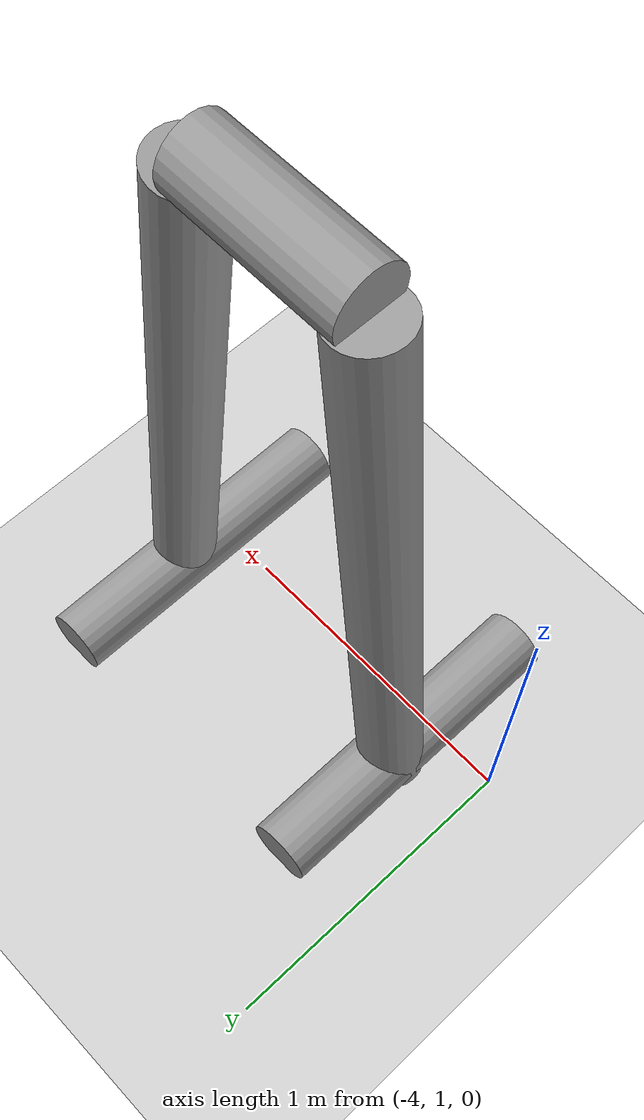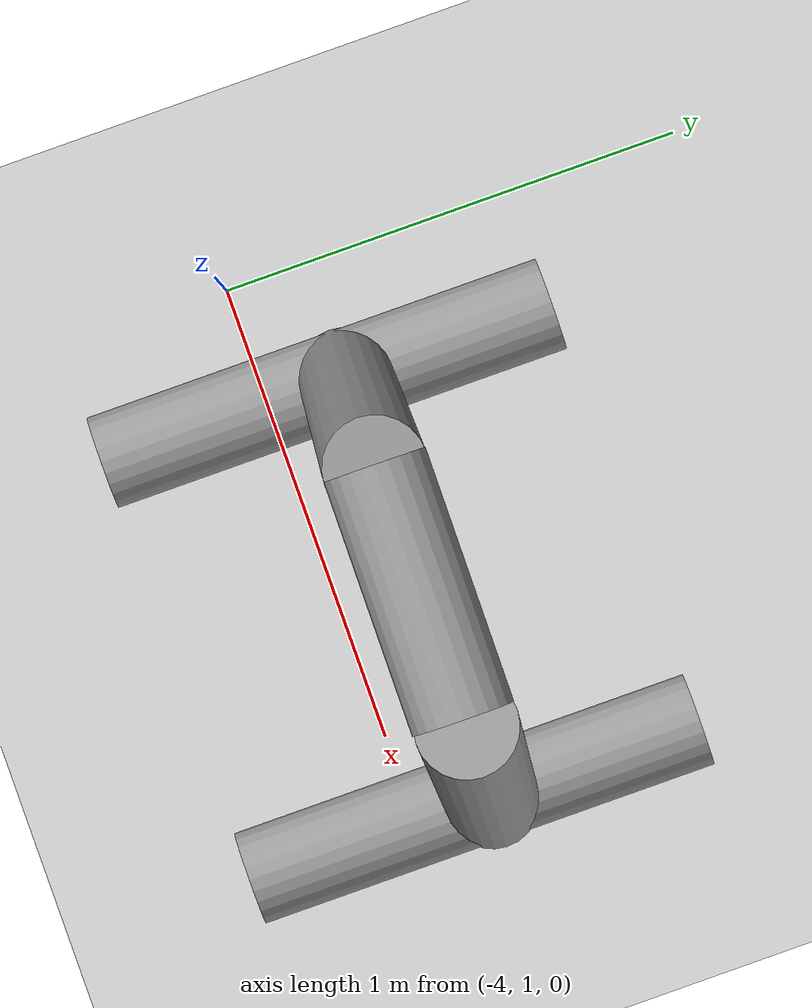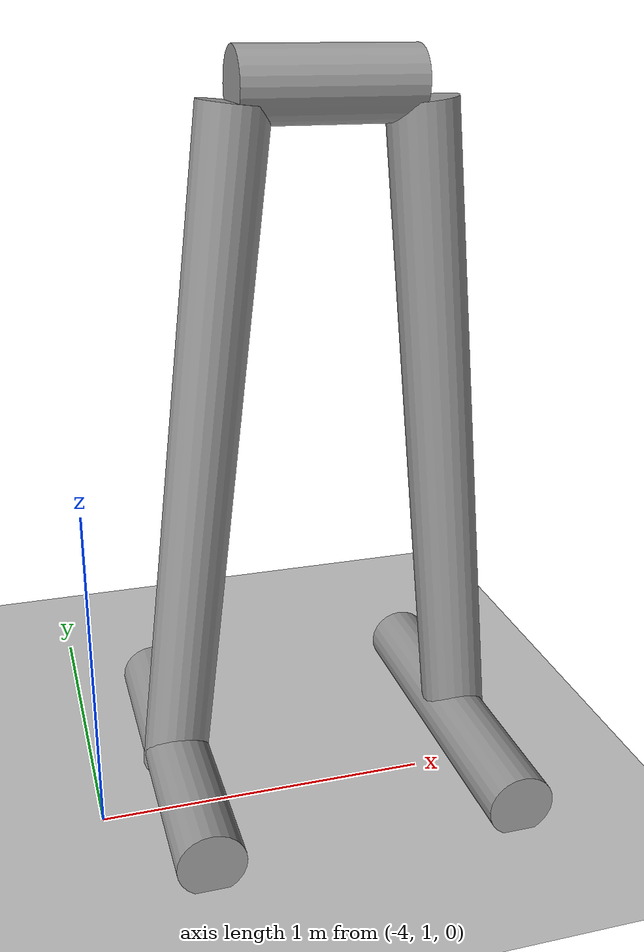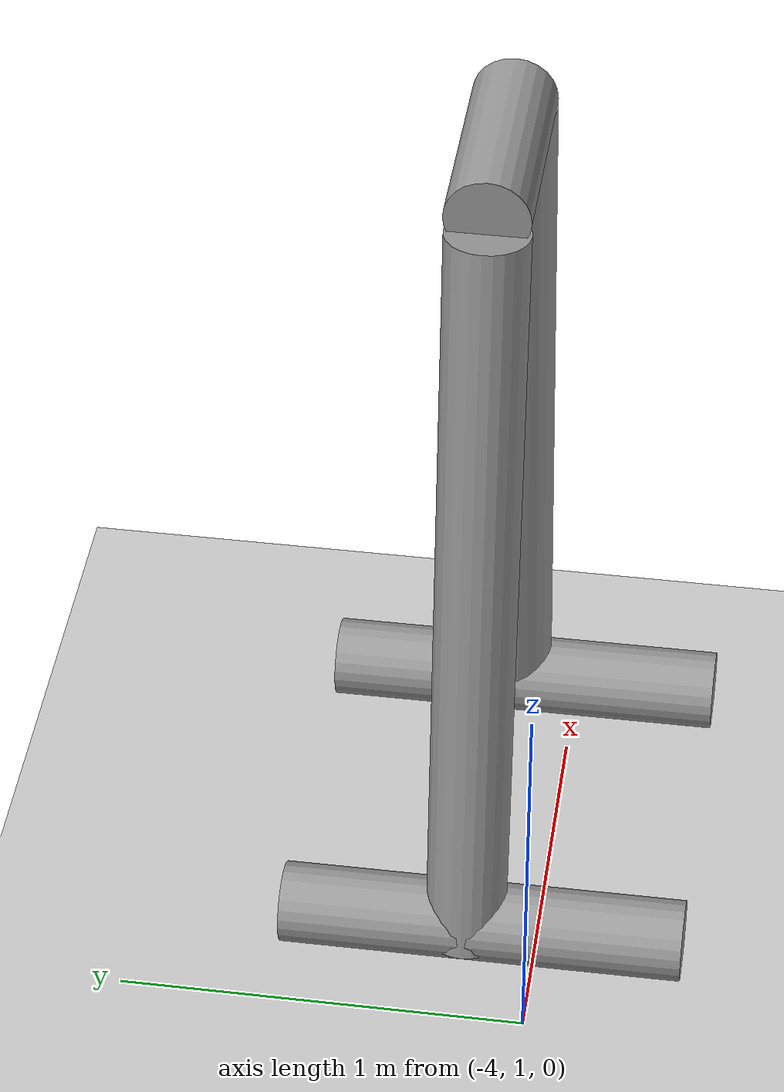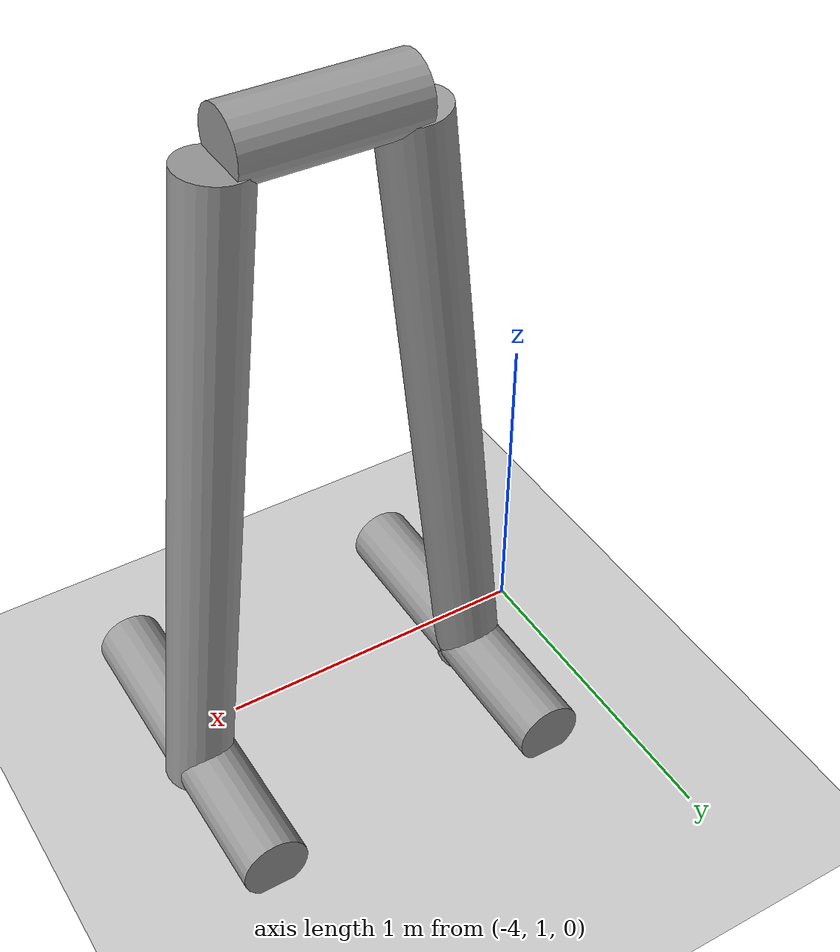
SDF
<sdf version="1.6">
 <world name="default">
  <model name="ground_plane">
   <static>1</static>
   <link name="link">
    <collision name="collision">
     <geometry><plane><normal>0 0 1</normal><size>100 100</size></plane></geometry>
     <surface><friction><ode><mu>100</mu><mu2>50</mu2></ode></friction></surface>
    </collision>
    <visual name="visual">
     <cast_shadows>0</cast_shadows>
     <geometry><plane><normal>0 0 1</normal><size>100 100</size></plane></geometry>
     <material>
      <script><uri>file://media/materials/scripts/gazebo.material</uri><name>Gazebo/Grey</name></script>
     </material>
    </visual>
   </link>
  </model>
  <model name="gray_obstacle_clone">
   <link name="link_7_clone">
    <inertial>
     <mass>1</mass>
     <inertia><ixx>0.145833</ixx><ixy>0</ixy><ixz>0</ixz><iyy>0.145833</iyy><iyz>0</iyz><izz>0.125</izz></inertia>
    </inertial>
    <pose>-0.466156 -0.025083 -0.775714 1.56843 -0 0</pose>
    <visual name="visual">
     <geometry><cylinder><radius>0.1</radius><length>1</length></cylinder></geometry>
     <material>
      <lighting>1</lighting>
      <script><uri>file://media/materials/scripts/gazebo.material</uri><name>Gazebo/Grey</name></script>
      <shader type="pixel"><normal_map>__default__</normal_map></shader>
      <ambient>0.3 0.3 0.3 1</ambient>
      <diffuse>0.7 0.7 0.7 1</diffuse>
      <specular>0.01 0.01 0.01 1</specular>
      <emissive>0 0 0 1</emissive>
     </material>
    </visual>
    <collision name="collision">
     <geometry><cylinder><radius>0.1</radius><length>1</length></cylinder></geometry>
     <surface>
      <friction>
       <ode><mu>1</mu><mu2>1</mu2><fdir1>0 0 0</fdir1><slip1>0</slip1><slip2>0</slip2></ode>
       <torsional>
        <coefficient>1</coefficient>
        <patch_radius>0</patch_radius>
        <surface_radius>0</surface_radius>
        <use_patch_radius>1</use_patch_radius>
        <ode><slip>0</slip></ode>
       </torsional>
      </friction>
      <bounce><restitution_coefficient>0</restitution_coefficient><threshold>1e+06</threshold></bounce>
      <contact>
       <collide_without_contact>0</collide_without_contact>
       <collide_without_contact_bitmask>1</collide_without_contact_bitmask>
       <collide_bitmask>1</collide_bitmask>
       <ode>
        <soft_cfm>0</soft_cfm>
        <soft_erp>0.2</soft_erp>
        <kp>1e+13</kp>
        <kd>1</kd>
        <max_vel>0.01</max_vel>
        <min_depth>0</min_depth>
       </ode>
       <bullet>
        <split_impulse>1</split_impulse>
        <split_impulse_penetration_threshold>-0.01</split_impulse_penetration_threshold>
        <soft_cfm>0</soft_cfm>
        <soft_erp>0.2</soft_erp>
        <kp>1e+13</kp>
        <kd>1</kd>
       </bullet>
      </contact>
     </surface>
    </collision>
   </link>
   <link name="link_7_clone_clone">
    <inertial>
     <mass>1</mass>
     <inertia><ixx>0.145833</ixx><ixy>0</ixy><ixz>0</ixz><iyy>0.145833</iyy><iyz>0</iyz><izz>0.125</izz></inertia>
    </inertial>
    <pose>-0.361144 0.017632 0.17283 -0.002067 0.110772 -0.005761</pose>
    <visual name="visual">
     <geometry><cylinder><radius>0.1</radius><length>2</length></cylinder></geometry>
     <material>
      <lighting>1</lighting>
      <script><uri>file://media/materials/scripts/gazebo.material</uri><name>Gazebo/Grey</name></script>
      <shader type="pixel"><normal_map>__default__</normal_map></shader>
      <ambient>0.3 0.3 0.3 1</ambient>
      <diffuse>0.7 0.7 0.7 1</diffuse>
      <specular>0.01 0.01 0.01 1</specular>
      <emissive>0 0 0 1</emissive>
     </material>
    </visual>
    <collision name="collision">
     <geometry><cylinder><radius>0.1</radius><length>2</length></cylinder></geometry>
     <surface>
      <friction>
       <ode><mu>1</mu><mu2>1</mu2><fdir1>0 0 0</fdir1><slip1>0</slip1><slip2>0</slip2></ode>
       <torsional>
        <coefficient>1</coefficient>
        <patch_radius>0</patch_radius>
        <surface_radius>0</surface_radius>
        <use_patch_radius>1</use_patch_radius>
        <ode><slip>0</slip></ode>
       </torsional>
      </friction>
      <bounce><restitution_coefficient>0</restitution_coefficient><threshold>1e+06</threshold></bounce>
      <contact>
       <collide_without_contact>0</collide_without_contact>
       <collide_without_contact_bitmask>1</collide_without_contact_bitmask>
       <collide_bitmask>1</collide_bitmask>
       <ode>
        <soft_cfm>0</soft_cfm>
        <soft_erp>0.2</soft_erp>
        <kp>1e+13</kp>
        <kd>1</kd>
        <max_vel>0.01</max_vel>
        <min_depth>0</min_depth>
       </ode>
       <bullet>
        <split_impulse>1</split_impulse>
        <split_impulse_penetration_threshold>-0.01</split_impulse_penetration_threshold>
        <soft_cfm>0</soft_cfm>
        <soft_erp>0.2</soft_erp>
        <kp>1e+13</kp>
        <kd>1</kd>
       </bullet>
      </contact>
     </surface>
    </collision>
   </link>
   <link name="link_7_clone_clone_0">
    <inertial>
     <mass>1</mass>
     <inertia><ixx>0.145833</ixx><ixy>0</ixy><ixz>0</ixz><iyy>0.145833</iyy><iyz>0</iyz><izz>0.125</izz></inertia>
    </inertial>
    <pose>-0.005883 0.018735 1.20577 1.57078 0.002366 1.56494</pose>
    <visual name="visual">
     <geometry><cylinder><radius>0.1</radius><length>0.5</length></cylinder></geometry>
     <material>
      <lighting>1</lighting>
      <script><uri>file://media/materials/scripts/gazebo.material</uri><name>Gazebo/Grey</name></script>
      <shader type="pixel"><normal_map>__default__</normal_map></shader>
      <ambient>0.3 0.3 0.3 1</ambient>
      <diffuse>0.7 0.7 0.7 1</diffuse>
      <specular>0.01 0.01 0.01 1</specular>
      <emissive>0 0 0 1</emissive>
     </material>
    </visual>
    <collision name="collision">
     <geometry><cylinder><radius>0.1</radius><length>0.5</length></cylinder></geometry>
     <surface>
      <friction>
       <ode><mu>1</mu><mu2>1</mu2><fdir1>0 0 0</fdir1><slip1>0</slip1><slip2>0</slip2></ode>
       <torsional>
        <coefficient>1</coefficient>
        <patch_radius>0</patch_radius>
        <surface_radius>0</surface_radius>
        <use_patch_radius>1</use_patch_radius>
        <ode><slip>0</slip></ode>
       </torsional>
      </friction>
      <bounce><restitution_coefficient>0</restitution_coefficient><threshold>1e+06</threshold></bounce>
      <contact>
       <collide_without_contact>0</collide_without_contact>
       <collide_without_contact_bitmask>1</collide_without_contact_bitmask>
       <collide_bitmask>1</collide_bitmask>
       <ode>
        <soft_cfm>0</soft_cfm>
        <soft_erp>0.2</soft_erp>
        <kp>1e+13</kp>
        <kd>1</kd>
        <max_vel>0.01</max_vel>
        <min_depth>0</min_depth>
       </ode>
       <bullet>
        <split_impulse>1</split_impulse>
        <split_impulse_penetration_threshold>-0.01</split_impulse_penetration_threshold>
        <soft_cfm>0</soft_cfm>
        <soft_erp>0.2</soft_erp>
        <kp>1e+13</kp>
        <kd>1</kd>
       </bullet>
      </contact>
     </surface>
    </collision>
   </link>
   <link name="link_7_clone_clone_2">
    <inertial>
     <mass>1</mass>
     <inertia><ixx>0.145833</ixx><ixy>0</ixy><ixz>0</ixz><iyy>0.145833</iyy><iyz>0</iyz><izz>0.125</izz></inertia>
    </inertial>
    <pose>0.461653 -0.025083 -0.775714 1.56843 -0 0</pose>
    <visual name="visual">
     <geometry><cylinder><radius>0.1</radius><length>1</length></cylinder></geometry>
     <material>
      <lighting>1</lighting>
      <script><uri>file://media/materials/scripts/gazebo.material</uri><name>Gazebo/Grey</name></script>
      <shader type="pixel"><normal_map>__default__</normal_map></shader>
      <ambient>0.3 0.3 0.3 1</ambient>
      <diffuse>0.7 0.7 0.7 1</diffuse>
      <specular>0.01 0.01 0.01 1</specular>
      <emissive>0 0 0 1</emissive>
     </material>
    </visual>
    <collision name="collision">
     <geometry><cylinder><radius>0.1</radius><length>1</length></cylinder></geometry>
     <surface>
      <friction>
       <ode><mu>1</mu><mu2>1</mu2><fdir1>0 0 0</fdir1><slip1>0</slip1><slip2>0</slip2></ode>
       <torsional>
        <coefficient>1</coefficient>
        <patch_radius>0</patch_radius>
        <surface_radius>0</surface_radius>
        <use_patch_radius>1</use_patch_radius>
        <ode><slip>0</slip></ode>
       </torsional>
      </friction>
      <bounce><restitution_coefficient>0</restitution_coefficient><threshold>1e+06</threshold></bounce>
      <contact>
       <collide_without_contact>0</collide_without_contact>
       <collide_without_contact_bitmask>1</collide_without_contact_bitmask>
       <collide_bitmask>1</collide_bitmask>
       <ode>
        <soft_cfm>0</soft_cfm>
        <soft_erp>0.2</soft_erp>
        <kp>1e+13</kp>
        <kd>1</kd>
        <max_vel>0.01</max_vel>
        <min_depth>0</min_depth>
       </ode>
       <bullet>
        <split_impulse>1</split_impulse>
        <split_impulse_penetration_threshold>-0.01</split_impulse_penetration_threshold>
        <soft_cfm>0</soft_cfm>
        <soft_erp>0.2</soft_erp>
        <kp>1e+13</kp>
        <kd>1</kd>
       </bullet>
      </contact>
     </surface>
    </collision>
   </link>
   <link name="link_7_clone_clone_clone">
    <inertial>
     <mass>1</mass>
     <inertia><ixx>0.145833</ixx><ixy>0</ixy><ixz>0</ixz><iyy>0.145833</iyy><iyz>0</iyz><izz>0.125</izz></inertia>
    </inertial>
    <pose>0.37153 0.013812 0.17283 0.002067 0.110772 3.11949</pose>
    <visual name="visual">
     <geometry><cylinder><radius>0.1</radius><length>2</length></cylinder></geometry>
     <material>
      <lighting>1</lighting>
      <script><uri>file://media/materials/scripts/gazebo.material</uri><name>Gazebo/Grey</name></script>
      <shader type="pixel"><normal_map>__default__</normal_map></shader>
      <ambient>0.3 0.3 0.3 1</ambient>
      <diffuse>0.7 0.7 0.7 1</diffuse>
      <specular>0.01 0.01 0.01 1</specular>
      <emissive>0 0 0 1</emissive>
     </material>
    </visual>
    <collision name="collision">
     <geometry><cylinder><radius>0.1</radius><length>2</length></cylinder></geometry>
     <surface>
      <friction>
       <ode><mu>1</mu><mu2>1</mu2><fdir1>0 0 0</fdir1><slip1>0</slip1><slip2>0</slip2></ode>
       <torsional>
        <coefficient>1</coefficient>
        <patch_radius>0</patch_radius>
        <surface_radius>0</surface_radius>
        <use_patch_radius>1</use_patch_radius>
        <ode><slip>0</slip></ode>
       </torsional>
      </friction>
      <bounce><restitution_coefficient>0</restitution_coefficient><threshold>1e+06</threshold></bounce>
      <contact>
       <collide_without_contact>0</collide_without_contact>
       <collide_without_contact_bitmask>1</collide_without_contact_bitmask>
       <collide_bitmask>1</collide_bitmask>
       <ode>
        <soft_cfm>0</soft_cfm>
        <soft_erp>0.2</soft_erp>
        <kp>1e+13</kp>
        <kd>1</kd>
        <max_vel>0.01</max_vel>
        <min_depth>0</min_depth>
       </ode>
       <bullet>
        <split_impulse>1</split_impulse>
        <split_impulse_penetration_threshold>-0.01</split_impulse_penetration_threshold>
        <soft_cfm>0</soft_cfm>
        <soft_erp>0.2</soft_erp>
        <kp>1e+13</kp>
        <kd>1</kd>
       </bullet>
      </contact>
     </surface>
    </collision>
   </link>
   <static>1</static>
   <pose>-3.27732 1.15847 0.857606 0 -0 0</pose>
  </model>
 </world>
</sdf>
